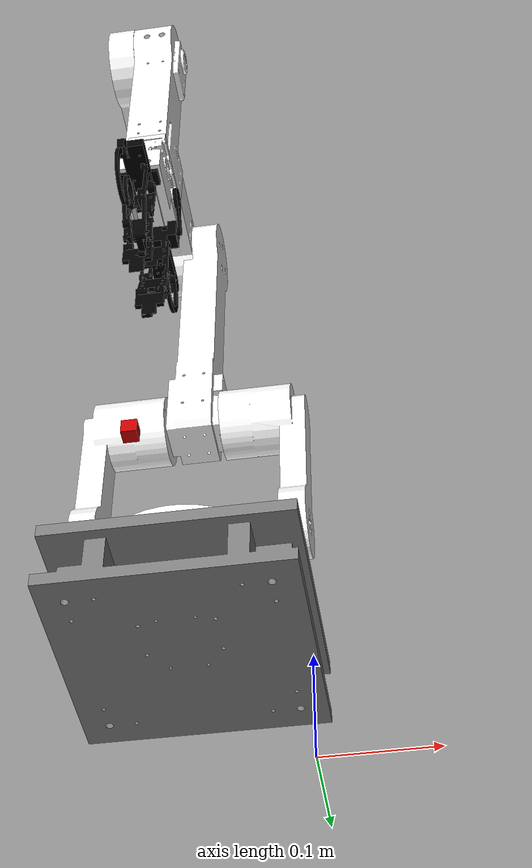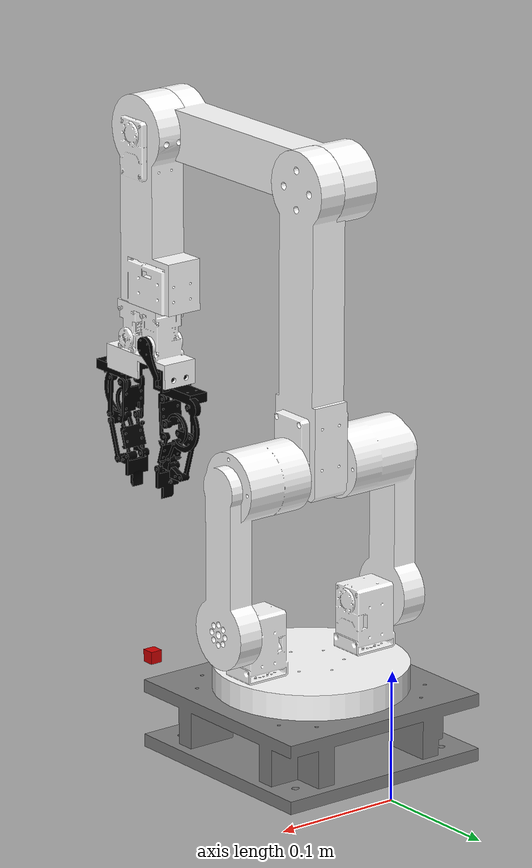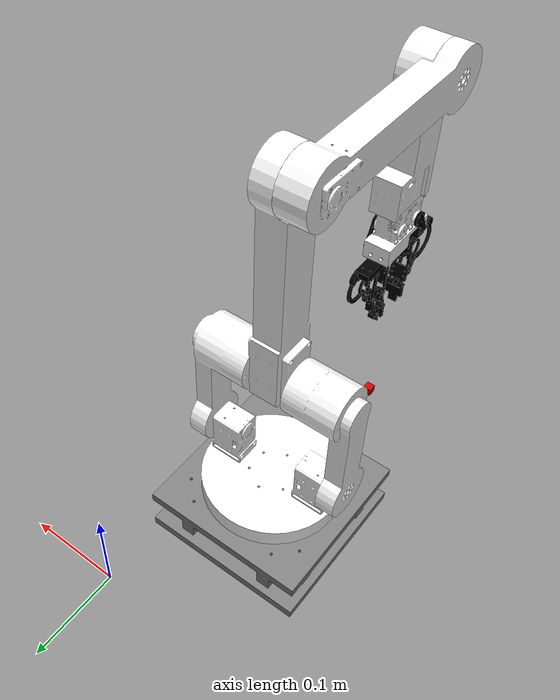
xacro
<?xml version="1.0"?>
<robot xmlns:xacro="http://www.ros.org/wiki/xacro" name="Go_manipulator">
    <xacro:arg name="initial_positions_file" default="initial_positions.yaml" />

    <!-- Import Go_manipulator urdf file -->
    <xacro:include filename="$(find Go_manipulator_description)/urdf/go_manipulator.urdf.xacro" />

    <!-- Import control_xacro -->
    <xacro:include filename="Go_manipulator.ros2_control.xacro" />

    <xacro:Go_manipulator_ros2_control name="FakeSystem" initial_positions_file="$(arg initial_positions_file)"/>

</robot>

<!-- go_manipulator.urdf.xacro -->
<robot name="Go_manipulator" xmlns:xacro="http://www.ros.org/wiki/xacro">
  <xacro:arg name="prefix" default="" />
  <xacro:arg name="use_sim" default="false" />
  <xacro:arg name="use_fake_hardware" default="false" />
  <xacro:arg name="fake_sensor_commands" default="false" />

  <xacro:include filename="$(find Go_manipulator_description)/ros2_control/go_manipulator_y_system.ros2_control.xacro" />

  <!-- Material Definitions -->
  <material name="black">
    <color rgba="0.0 0.0 0.0 1.0"/>
  </material>
  <material name="grey">
    <color rgba="0.5 0.5 0.5 1.0"/>
  </material>
  <material name="white">
    <color rgba="1.0 1.0 1.0 1.0"/>
  </material>
  <material name="red">
    <color rgba="0.8 0.0 0.0 1.0"/>
  </material>

  <!-- Arm 포함 -->
  <xacro:include filename="$(find Go_manipulator_description)/urdf/go_manipulator_arm.urdf.xacro"/>
  <xacro:go_manipulator_arm prefix="$(arg prefix)"/>

  <!-- Gripper 포함 -->
  <xacro:include filename="$(find Go_manipulator_description)/urdf/go_gripper.urdf.xacro"/>
  <xacro:go_gripper prefix="$(arg prefix)"/>

  <!-- World -->
  <link name="world"/>

  <!-- Used for fixing OpenManipulator-Y -->
  <joint name="$(arg prefix)world_fixed" type="fixed">
    <parent link="world"/>
    <child link="$(arg prefix)link0"/>
    <origin xyz="0.0 0.0 0.0" rpy="0 0 0"/>
  </joint>

  <joint name="$(arg prefix)gripper_fixed" type="fixed">
    <origin xyz="0.0 -0.0 0.0" rpy="0 1.5708 0" />
    <parent link="$(arg prefix)link6"/>
    <axis xyz="0 0 0"/>
    <child link="$(arg prefix)gripper_base"/>
  </joint>

</robot>

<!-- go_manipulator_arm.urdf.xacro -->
<robot xmlns:xacro="http://www.ros.org/wiki/xacro">

  <!-- Define prefix with a default value if not provided -->
  <xacro:macro name="go_manipulator_arm" params="prefix">

    <xacro:property name="meshes_file_direction" value="package://Go_manipulator_description/meshes"/>

    <!-- Base Link -->
    <link name="${prefix}link0">
      <inertial>
        <origin xyz="-0.0676 -0.0067 0.1811" rpy="0 0 0" />
        <mass value="0.8410" />
        <inertia ixx="0.0026" ixy="2.8e-13" ixz="-4.3e-13" iyy="0.0044" iyz="-5.1e-7" izz="0.0025" />
      </inertial>
      <visual>
        <origin xyz="0 0 0" rpy="0 0 0" />
        <geometry>
          <mesh filename="${meshes_file_direction}/base_link.STL" />
        </geometry>
        <material name="grey" />
      </visual>
      <collision>
        <origin xyz="0 0 0" rpy="0 0 0" />
        <geometry>
          <mesh filename="${meshes_file_direction}/base_link.STL" />
        </geometry>
      </collision>
    </link>

    <!-- Link 1 -->
    <link name="${prefix}link1">
      <inertial>
        <origin xyz="0 0.0180 0.00005" rpy="0 0 0" />
        <mass value="0.4427" />
        <inertia ixx="0.0006" ixy="8.3e-21" ixz="-1.2e-13" iyy="0.0013" iyz="-6.98e-7" izz="0.0009" />
      </inertial>
      <visual>
        <origin xyz="0 0 0" rpy="0 0 0" />
        <geometry>
          <mesh filename="${meshes_file_direction}/link1.STL" />
        </geometry>
        <material name="white"/>
      </visual>
      <collision>
        <origin xyz="0 0 0" rpy="0 0 0" />
        <geometry>
          <mesh filename="${meshes_file_direction}/link1.STL" />
        </geometry>
      </collision>
    </link>

    <!-- Joint 1 -->
    <joint name="${prefix}joint1" type="revolute">
      <origin xyz="-0.0676 -0.18 0.0207" rpy="1.5708 0 0" />
      <parent link="${prefix}link0" />
      <child link="${prefix}link1" />
      <axis xyz="0 1 0" />
      <limit lower="-3.14159" upper="3.14159" effort="1" velocity="1.0" />
    </joint>

    <!-- Link 2 -->
    <link name="${prefix}link2">
      <inertial>
        <origin xyz="0 0.0253 0.0751" rpy="0 0 0" />
        <mass value="0.4222" />
        <inertia ixx="0.0010" ixy="-4.91e-15" ixz="1.65e-15" iyy="0.0027" iyz="-0.00027" izz="0.0020" />
      </inertial>
      <visual>
        <origin xyz="0 0 0" rpy="0 0 0" />
        <geometry>
          <mesh filename="${meshes_file_direction}/link2.STL" />
        </geometry>
        <material name="white"/>
      </visual>
      <collision>
        <origin xyz="0 0 0" rpy="0 0 0" />
        <geometry>
          <mesh filename="${meshes_file_direction}/link2.STL" />
        </geometry>
      </collision>
    </link>

    <!-- Joint 2 -->
    <joint name="${prefix}joint2" type="revolute">
      <origin xyz="0 0.0605 0.00025" rpy="-1.2461 0 0" />
      <parent link="${prefix}link1" />
      <child link="${prefix}link2" />
      <axis xyz="1 0 0" />
      <limit lower="-3.14159" upper="3.14159" effort="1" velocity="1.0" />
    </joint>

    <!-- Link 3 -->
    <link name="${prefix}link3">
      <inertial>
        <origin xyz="0.0010 0.0340 0.0946" rpy="0 0 0" />
        <mass value="0.3496" />
        <inertia ixx="0.0022" ixy="-1.15e-5" ixz="-3.21e-5" iyy="0.0019" iyz="-0.00065" izz="0.00032" />
      </inertial>
      <visual>
        <origin xyz="0 0 0" rpy="0 0 0" />
        <geometry>
          <mesh filename="${meshes_file_direction}/link3.STL" />
        </geometry>
        <material name="white"/>
      </visual>
      <collision>
        <origin xyz="0 0 0" rpy="0 0 0" />
        <geometry>
          <mesh filename="${meshes_file_direction}/link3.STL" />
        </geometry>
      </collision>
    </link>

    <!-- Joint 3 -->
    <joint name="${prefix}joint3" type="revolute">
      <origin xyz="0 0.0360 0.1070" rpy="0.0142 0 0" />
      <parent link="${prefix}link2" />
      <child link="${prefix}link3" />
      <axis xyz="1 0 0" />
      <limit lower="-3.14159" upper="3.14159" effort="1" velocity="1.0" />
    </joint>

    <!-- Link 4 -->
    <link name="${prefix}link4">
      <inertial>
        <origin xyz="-0.0225 0.0259 0.0850" rpy="0 0 0" />
        <mass value="0.3143" />
        <inertia ixx="0.0018" ixy="7.0e-6" ixz="2.29e-5" iyy="0.0016" iyz="-0.00046" izz="0.00022" />
      </inertial>
      <visual>
        <origin xyz="0 0 0" rpy="0 0 0" />
        <geometry>
          <mesh filename="${meshes_file_direction}/link4.STL" />
        </geometry>
        <material name="white"/>
      </visual>
      <collision>
        <origin xyz="0 0 0" rpy="0 0 0" />
        <geometry>
          <mesh filename="${meshes_file_direction}/link4.STL" />
        </geometry>
      </collision>
    </link>

    <!-- Joint 4 -->
    <joint name="${prefix}joint4" type="revolute">
      <origin xyz="0 0.0738 0.2053" rpy="1.5283 0 0" />
      <parent link="${prefix}link3" />
      <child link="${prefix}link4" />
      <axis xyz="1 0 0" />
      <limit lower="-3.14159" upper="3.14159" effort="1" velocity="1.0" />
    </joint>

    <!-- Link 5 -->
    <link name="${prefix}link5">
      <inertial>
        <origin xyz="-0.0007 -0.0543 -0.0032" rpy="0 0 0" />
        <mass value="0.2388" />
        <inertia ixx="0.0006" ixy="2.93e-6" ixz="5.84e-7" iyy="7.49e-5" iyz="-4.25e-5" izz="0.0006" />
      </inertial>
      <visual>
        <origin xyz="0 0 0" rpy="0 0 0" />
        <geometry>
          <mesh filename="${meshes_file_direction}/link5.STL" />
        </geometry>
        <material name="white"/>
      </visual>
      <collision>
        <origin xyz="0 0 0" rpy="0 0 0" />
        <geometry>
          <mesh filename="${meshes_file_direction}/link5.STL" />
        </geometry>
      </collision>
    </link>

    <!-- Joint 5 -->
    <joint name="${prefix}joint5" type="revolute">
      <origin xyz="0 0.0583 0.1913" rpy="-0.2964 0 0" />
      <parent link="${prefix}link4" />
      <child link="${prefix}link5" />
      <axis xyz="1 0 0" />
      <limit lower="-3.14159" upper="3.14159" effort="1" velocity="1.0" />
    </joint>

<!-- rrr -->

    <joint name="${prefix}joint6" type="revolute">
      <parent link="${prefix}link5"/>
      <child link="${prefix}link6"/>
      <origin xyz="0.0006 -0.1363 -0.0005" rpy="0 1.5708 0" />
      <axis xyz="0 1 0"/>
      <limit velocity="4.8" effort="1" lower="${-pi*0.5}" upper="${pi*0.5}" />
      <dynamics damping="0.1"/>
    </joint>

    <link name="${prefix}link6">
      <visual>
        <origin xyz="0 0 0" rpy="0 0 0"/>
	    <geometry>
	      <box size="0.01 0.01 0.01"/>
	    </geometry>
        <material name="white"/>
      </visual>

      <collision>
        <origin xyz="0 0 0" rpy="0 0 0"/>
	    <geometry>
	      <box size="0.01 0.01 0.01"/>
	    </geometry>
      </collision>

       <inertial>
        <origin xyz="4.4206755e-02 3.6839985e-07 8.9142216e-03" />
        <mass value="1.4327573e-01" />
        <inertia ixx="8.0870749e-05" ixy="0.0" ixz="-1.0157896e-06"
                 iyy="7.5980465e-05" iyz="0.0"
                 izz="9.3127351e-05" />
      </inertial>
    </link>

    <!-- End Effector Joint -->
    <joint name="end_effector_joint" type="fixed">
      <parent link="${prefix}link6"/>
      <child link="end_effector_link"/>
      <origin xyz="0.0 -0.288 0.0 " rpy="0 0 0"/>
    </joint>

    <!-- End Effector Link -->
    <link name="end_effector_link">
      <visual>
        <origin rpy="0 0 0" xyz="0 0 0"/>
        <geometry>
          <box size="0.01 0.01 0.01"/>
        </geometry>
        <material name="red"/>
      </visual>
    </link>
  </xacro:macro>

</robot>

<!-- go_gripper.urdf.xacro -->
<robot xmlns:xacro="http://www.ros.org/wiki/xacro">

  <xacro:macro  name="go_gripper" params="prefix">

    <xacro:property name="meshes_file_direction" value="package://Go_manipulator_description/meshes"/>

    <!-- Gripper Base -->
    <link name="${prefix}gripper_base">
      <inertial>
        <origin xyz="0.0001 -0.0283 0" rpy="0 0 0" />
        <mass value="0.0568" />
        <inertia ixx="3.21e-5" ixy="8.06e-8" ixz="-3.23e-7" iyy="2.21e-5" iyz="-6.81e-18" izz="1.67e-5" />
      </inertial>
      <visual>
        <origin xyz="0 0 0" rpy="0 0 0" />
        <geometry>
          <mesh filename="${meshes_file_direction}/gripper_base.STL" />
        </geometry>
        <material name="white"/>
      </visual>
      <collision>
        <origin xyz="0 0 0" rpy="0 0 0" />
        <geometry>
          <mesh filename="${meshes_file_direction}/gripper_base.STL" />
        </geometry>
      </collision>
    </link>

    <!-- Gripper Finger 1 -->
    <link name="${prefix}gripper_finger1">
      <inertial>
        <origin xyz="0.0518 -0.0832 -0.0127" rpy="0 0 0" />
        <mass value="0.0356" />
        <inertia ixx="4.53e-5" ixy="-4.95e-7" ixz="-2.13e-7" iyy="2.41e-5" iyz="-8.24e-6" izz="2.56e-5" />
      </inertial>
      <visual>
        <origin xyz="0 0 0" rpy="0 0 0" />
        <geometry>
          <mesh filename="${meshes_file_direction}/gripper_finger1.STL" />
        </geometry>
        <material name="black"/>
      </visual>
      <collision>
        <origin xyz="0 0 0" rpy="0 0 0" />
        <geometry>
          <mesh filename="${meshes_file_direction}/gripper_finger1.STL" />
        </geometry>
      </collision>
    </link>

    <!-- Joint 7 -->
    <joint name="${prefix}joint7" type="revolute">
      <origin xyz="-0.0509 0.0241 -0.0024" rpy="0 0 0" />
      <parent link="${prefix}gripper_base" />
      <child link="${prefix}gripper_finger1" />
      <axis xyz="1 0 0" />
      <limit lower="-0.2" upper="0.2" effort="100" velocity="0.1" />
    </joint>

    <!-- Gripper Finger 2 -->
    <link name="${prefix}gripper_finger2">
      <inertial>
        <origin xyz="0.0518 0.0832 0.0141" rpy="0 0 0" />
        <mass value="0.0356" />
        <inertia ixx="4.53e-5" ixy="4.98e-7" ixz="2.22e-7" iyy="2.41e-5" iyz="-8.25e-6" izz="2.56e-5" />
      </inertial>
      <visual>
        <origin xyz="0 0 0" rpy="0 0 0" />
        <geometry>
          <mesh filename="${meshes_file_direction}/gripper_finger2.STL" />
        </geometry>
        <material name="black"/>
      </visual>
      <collision>
        <origin xyz="0 0 0" rpy="0 0 0" />
        <geometry>
          <mesh filename="${meshes_file_direction}/gripper_finger2.STL" />
        </geometry>
      </collision>
    </link>

    <!-- Joint 8 -->
    <joint name="${prefix}joint8" type="revolute">
      <origin xyz="0.0509 0.0241 0.0019" rpy="0 0 3.1416" />
      <parent link="${prefix}gripper_base" />
      <child link="${prefix}gripper_finger2" />
      <axis xyz="1 0 0" />
      <mimic joint="${prefix}joint7"/>
      <limit lower="-0.2" upper="0.2" effort="100" velocity="0.1" />
    </joint>
  </xacro:macro>
</robot>
